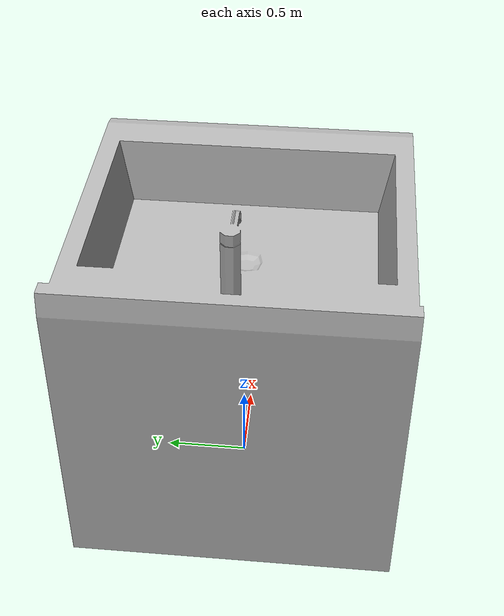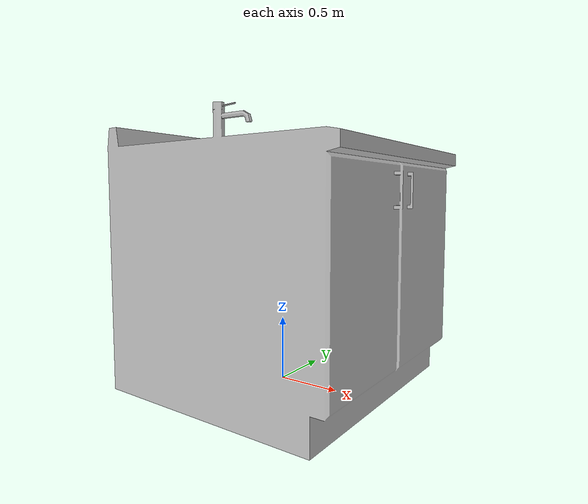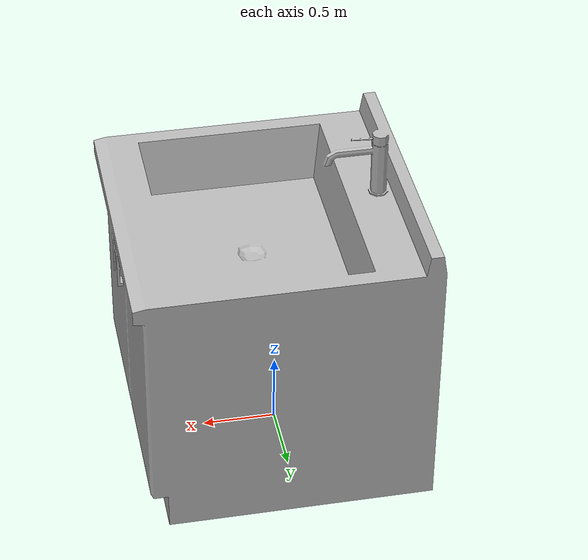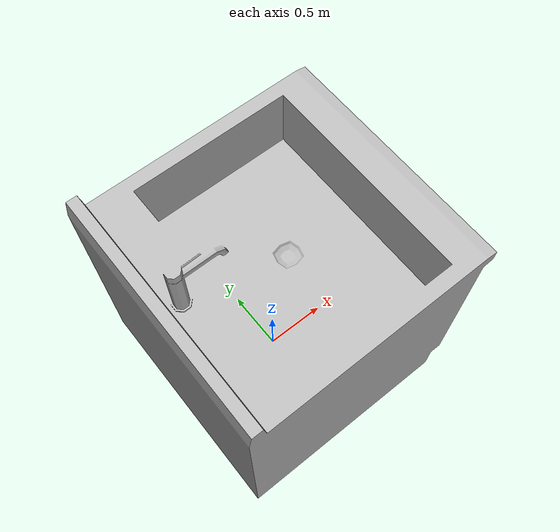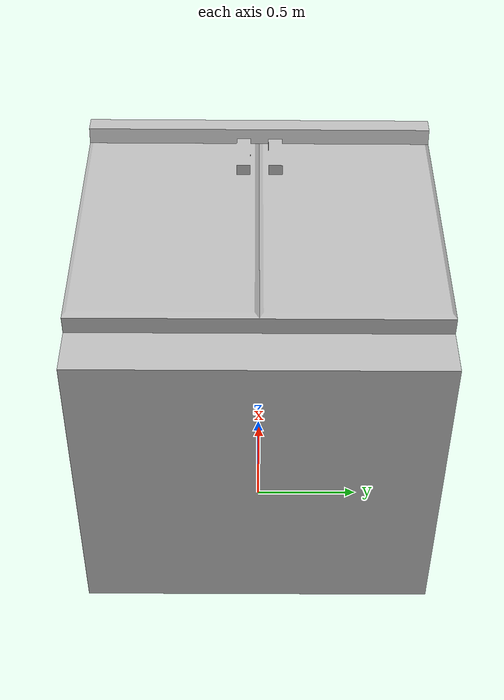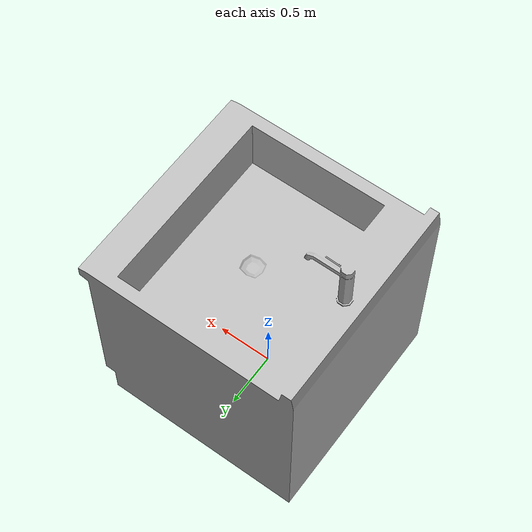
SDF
<?xml version="1.0" ?>
<sdf version="1.5">
  <model name="KitchenSink">
    <link name="link">
      <pose>0 0 0 0 0 0</pose>

        <visual name="visual">
          <geometry>
            <mesh>
              <uri>file:///root/ROS_vehicle/models/KitchenSink/meshes/kitchenSink.obj</uri>
              <scale>2.5 2.5 2.5</scale>
            </mesh>
          </geometry>
        </visual>

        <collision name="collision">
          <geometry>
            <mesh>
              <uri>file:///root/ROS_vehicle/models/KitchenSink/meshes/kitchenSink.obj</uri>
              <scale>2.5 2.5 2.5</scale>
            </mesh>
          </geometry>
        </collision>

    </link>
  </model>
</sdf>
